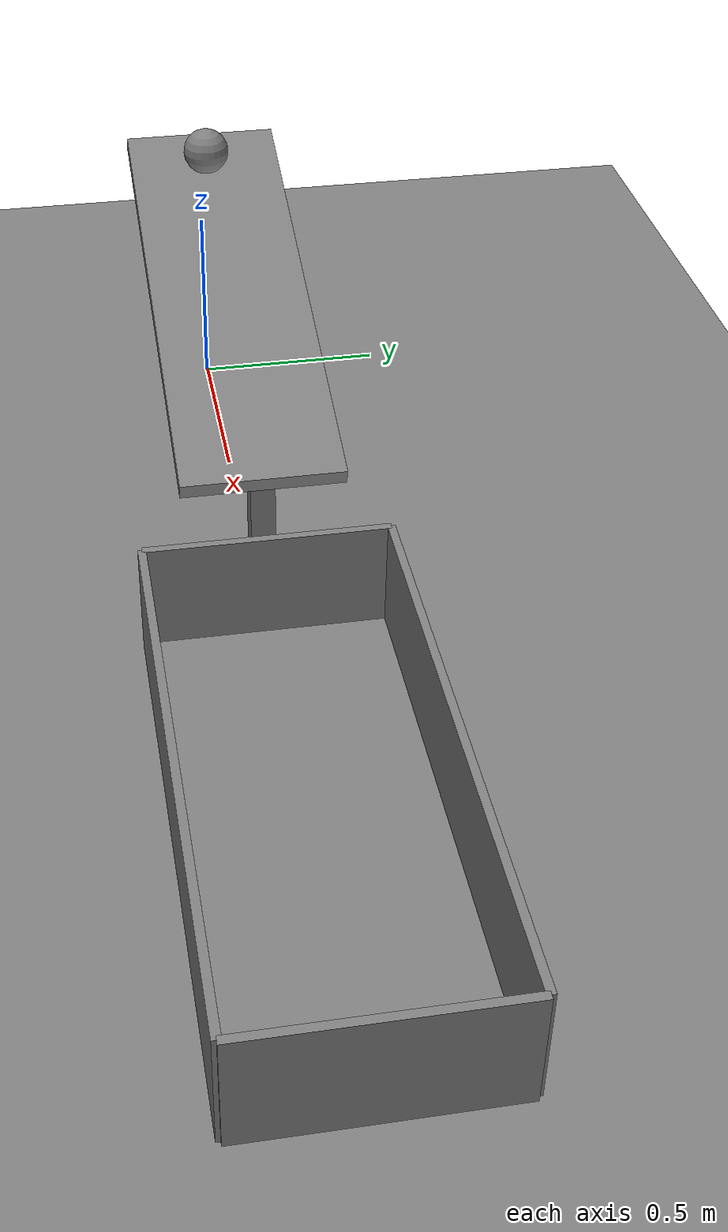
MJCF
<mujoco model="cup_fixture">
  <option timestep="0.002"/>
  <worldbody>
    <geom name="floor" type="plane" size="6 6 0.1" friction="0.8 0.005 0.002"/>
    <geom name="ramp_deck" type="box" pos="0.6000 0 0.5850" euler="0 15.376 0" size="0.6223 0.2 0.02"/>
    <geom name="ramp_leg" type="box" pos="0.0000 0 0.3700" size="0.03 0.03 0.3700"/>
    <geom name="ramp_leg2" type="box" pos="1.1500 0 0.2000" size="0.03 0.03 0.2000"/>
    <body name="ball" pos="0.1617 0 0.7906">
      <freejoint/>
      <geom name="ball" type="sphere" size="0.06" mass="0.2" condim="6" friction="0.8 0.01 0.004" solref="0.01 1"/>
    </body>
    <body name="cup" pos="1.9500 0 0">
      <geom name="cup_base" type="box" pos="0 0 0.01" size="0.700 0.300 0.01" friction="1 0.02 0.02"/>
      <geom name="cup_near" type="box" pos="-0.700 0 0.150" size="0.01 0.300 0.150"/>
      <geom name="cup_far" type="box" pos="0.700 0 0.150" size="0.01 0.300 0.150"/>
      <geom name="cup_left" type="box" pos="0 0.300 0.150" size="0.700 0.01 0.150"/>
      <geom name="cup_right" type="box" pos="0 -0.300 0.150" size="0.700 0.01 0.150"/>
    </body>
  </worldbody>
</mujoco>
